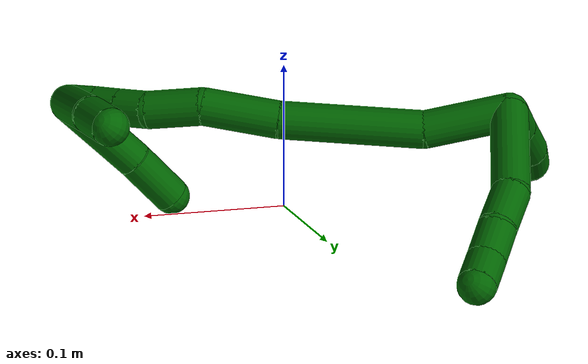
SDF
<sdf version="1.7">
 <world name="default">
  <model name="6">
   <static>0</static>
   <link name="6">
    <collision name="collision-cylinder-e_1_2_8">
     <pose>0.027627 0.019036 0.014315 -0.926016 0.859309 -0.449734</pose>
     <geometry><cylinder><radius>0.0125</radius><length>0.072952</length></cylinder></geometry>
     <surface>
      <friction><ode><mu>1.16</mu><mu2>1.16</mu2><slip1>0</slip1><slip2>0</slip2></ode></friction>
      <contact><ode><kp>1e+06</kp><kd>1</kd><max_vel>0</max_vel><min_depth>0.001</min_depth></ode></contact>
     </surface>
    </collision>
    <visual name="visual-cylinder-e_1_2_8">
     <pose>0.027627 0.019036 0.014315 -0.926016 0.859309 -0.449734</pose>
     <geometry><cylinder><radius>0.0125</radius><length>0.072952</length></cylinder></geometry>
     <material><ambient>0 0.392157 0.003922 1</ambient></material>
    </visual>
    <collision name="collision-cylinder-e_2_8_9">
     <pose>0.06809 0.042061 0.035937 -0.499698 0.995413 -0.275538</pose>
     <geometry><cylinder><radius>0.0125</radius><length>0.030601</length></cylinder></geometry>
     <surface>
      <friction><ode><mu>1.16</mu><mu2>1.16</mu2><slip1>0</slip1><slip2>0</slip2></ode></friction>
      <contact><ode><kp>1e+06</kp><kd>1</kd><max_vel>0</max_vel><min_depth>0.001</min_depth></ode></contact>
     </surface>
    </collision>
    <visual name="visual-cylinder-e_2_8_9">
     <pose>0.06809 0.042061 0.035937 -0.499698 0.995413 -0.275538</pose>
     <geometry><cylinder><radius>0.0125</radius><length>0.030601</length></cylinder></geometry>
     <material><ambient>0 0.392157 0.003922 1</ambient></material>
    </visual>
    <collision name="collision-cylinder-e_3_9_10">
     <pose>0.092013 0.048371 0.046888 -0.56729 1.19933 -0.393417</pose>
     <geometry><cylinder><radius>0.0125</radius><length>0.023795</length></cylinder></geometry>
     <surface>
      <friction><ode><mu>1.16</mu><mu2>1.16</mu2><slip1>0</slip1><slip2>0</slip2></ode></friction>
      <contact><ode><kp>1e+06</kp><kd>1</kd><max_vel>0</max_vel><min_depth>0.001</min_depth></ode></contact>
     </surface>
    </collision>
    <visual name="visual-cylinder-e_3_9_10">
     <pose>0.092013 0.048371 0.046888 -0.56729 1.19933 -0.393417</pose>
     <geometry><cylinder><radius>0.0125</radius><length>0.023795</length></cylinder></geometry>
     <material><ambient>0 0.392157 0.003922 1</ambient></material>
    </visual>
    <collision name="collision-cylinder-e_4_10_6">
     <pose>0.11216 0.054106 0.056405 -0.526519 0.927269 -0.267892</pose>
     <geometry><cylinder><radius>0.0125</radius><length>0.022652</length></cylinder></geometry>
     <surface>
      <friction><ode><mu>1.16</mu><mu2>1.16</mu2><slip1>0</slip1><slip2>0</slip2></ode></friction>
      <contact><ode><kp>1e+06</kp><kd>1</kd><max_vel>0</max_vel><min_depth>0.001</min_depth></ode></contact>
     </surface>
    </collision>
    <visual name="visual-cylinder-e_4_10_6">
     <pose>0.11216 0.054106 0.056405 -0.526519 0.927269 -0.267892</pose>
     <geometry><cylinder><radius>0.0125</radius><length>0.022652</length></cylinder></geometry>
     <material><ambient>0 0.392157 0.003922 1</ambient></material>
    </visual>
    <collision name="collision-cylinder-e_1_2_11">
     <pose>0.001745 -0.002877 -0.013151 2.92623 0.128894 1.07644</pose>
     <geometry><cylinder><radius>0.0125</radius><length>0.02715</length></cylinder></geometry>
     <surface>
      <friction><ode><mu>1.16</mu><mu2>1.16</mu2><slip1>0</slip1><slip2>0</slip2></ode></friction>
      <contact><ode><kp>1e+06</kp><kd>1</kd><max_vel>0</max_vel><min_depth>0.001</min_depth></ode></contact>
     </surface>
    </collision>
    <visual name="visual-cylinder-e_1_2_11">
     <pose>0.001745 -0.002877 -0.013151 2.92623 0.128894 1.07644</pose>
     <geometry><cylinder><radius>0.0125</radius><length>0.02715</length></cylinder></geometry>
     <material><ambient>0 0.392157 0.003922 1</ambient></material>
    </visual>
    <collision name="collision-cylinder-e_2_11_12">
     <pose>0.005325 -0.01068 -0.046879 2.90662 0.086507 0.702941</pose>
     <geometry><cylinder><radius>0.0125</radius><length>0.042474</length></cylinder></geometry>
     <surface>
      <friction><ode><mu>1.16</mu><mu2>1.16</mu2><slip1>0</slip1><slip2>0</slip2></ode></friction>
      <contact><ode><kp>1e+06</kp><kd>1</kd><max_vel>0</max_vel><min_depth>0.001</min_depth></ode></contact>
     </surface>
    </collision>
    <visual name="visual-cylinder-e_2_11_12">
     <pose>0.005325 -0.01068 -0.046879 2.90662 0.086507 0.702941</pose>
     <geometry><cylinder><radius>0.0125</radius><length>0.042474</length></cylinder></geometry>
     <material><ambient>0 0.392157 0.003922 1</ambient></material>
    </visual>
    <collision name="collision-cylinder-e_3_12_5">
     <pose>0.008837 -0.020923 -0.081583 2.7816 0.110703 0.591157</pose>
     <geometry><cylinder><radius>0.0125</radius><length>0.030376</length></cylinder></geometry>
     <surface>
      <friction><ode><mu>1.16</mu><mu2>1.16</mu2><slip1>0</slip1><slip2>0</slip2></ode></friction>
      <contact><ode><kp>1e+06</kp><kd>1</kd><max_vel>0</max_vel><min_depth>0.001</min_depth></ode></contact>
     </surface>
    </collision>
    <visual name="visual-cylinder-e_3_12_5">
     <pose>0.008837 -0.020923 -0.081583 2.7816 0.110703 0.591157</pose>
     <geometry><cylinder><radius>0.0125</radius><length>0.030376</length></cylinder></geometry>
     <material><ambient>0 0.392157 0.003922 1</ambient></material>
    </visual>
    <collision name="collision-cylinder-e_1_2_13">
     <pose>0.014363 -0.022206 0.008804 1.19336 0.541337 0.372595</pose>
     <geometry><cylinder><radius>0.0125</radius><length>0.055746</length></cylinder></geometry>
     <surface>
      <friction><ode><mu>1.16</mu><mu2>1.16</mu2><slip1>0</slip1><slip2>0</slip2></ode></friction>
      <contact><ode><kp>1e+06</kp><kd>1</kd><max_vel>0</max_vel><min_depth>0.001</min_depth></ode></contact>
     </surface>
    </collision>
    <visual name="visual-cylinder-e_1_2_13">
     <pose>0.014363 -0.022206 0.008804 1.19336 0.541337 0.372595</pose>
     <geometry><cylinder><radius>0.0125</radius><length>0.055746</length></cylinder></geometry>
     <material><ambient>0 0.392157 0.003922 1</ambient></material>
    </visual>
    <collision name="collision-cylinder-e_2_13_14">
     <pose>0.041942 -0.084165 0.039028 1.07654 0.284751 0.170761</pose>
     <geometry><cylinder><radius>0.0125</radius><length>0.094101</length></cylinder></geometry>
     <surface>
      <friction><ode><mu>1.16</mu><mu2>1.16</mu2><slip1>0</slip1><slip2>0</slip2></ode></friction>
      <contact><ode><kp>1e+06</kp><kd>1</kd><max_vel>0</max_vel><min_depth>0.001</min_depth></ode></contact>
     </surface>
    </collision>
    <visual name="visual-cylinder-e_2_13_14">
     <pose>0.041942 -0.084165 0.039028 1.07654 0.284751 0.170761</pose>
     <geometry><cylinder><radius>0.0125</radius><length>0.094101</length></cylinder></geometry>
     <material><ambient>0 0.392157 0.003922 1</ambient></material>
    </visual>
    <collision name="collision-cylinder-e_3_14_15">
     <pose>0.059584 -0.145855 0.07238 1.0727 0.175349 0.104415</pose>
     <geometry><cylinder><radius>0.0125</radius><length>0.050725</length></cylinder></geometry>
     <surface>
      <friction><ode><mu>1.16</mu><mu2>1.16</mu2><slip1>0</slip1><slip2>0</slip2></ode></friction>
      <contact><ode><kp>1e+06</kp><kd>1</kd><max_vel>0</max_vel><min_depth>0.001</min_depth></ode></contact>
     </surface>
    </collision>
    <visual name="visual-cylinder-e_3_14_15">
     <pose>0.059584 -0.145855 0.07238 1.0727 0.175349 0.104415</pose>
     <geometry><cylinder><radius>0.0125</radius><length>0.050725</length></cylinder></geometry>
     <material><ambient>0 0.392157 0.003922 1</ambient></material>
    </visual>
    <collision name="collision-cylinder-e_4_15_16">
     <pose>0.070788 -0.184426 0.089105 1.29018 0.373281 0.282305</pose>
     <geometry><cylinder><radius>0.0125</radius><length>0.037178</length></cylinder></geometry>
     <surface>
      <friction><ode><mu>1.16</mu><mu2>1.16</mu2><slip1>0</slip1><slip2>0</slip2></ode></friction>
      <contact><ode><kp>1e+06</kp><kd>1</kd><max_vel>0</max_vel><min_depth>0.001</min_depth></ode></contact>
     </surface>
    </collision>
    <visual name="visual-cylinder-e_4_15_16">
     <pose>0.070788 -0.184426 0.089105 1.29018 0.373281 0.282305</pose>
     <geometry><cylinder><radius>0.0125</radius><length>0.037178</length></cylinder></geometry>
     <material><ambient>0 0.392157 0.003922 1</ambient></material>
    </visual>
    <collision name="collision-cylinder-e_5_16_17">
     <pose>0.079224 -0.211574 0.094163 1.54568 0.156307 0.152445</pose>
     <geometry><cylinder><radius>0.0125</radius><length>0.021297</length></cylinder></geometry>
     <surface>
      <friction><ode><mu>1.16</mu><mu2>1.16</mu2><slip1>0</slip1><slip2>0</slip2></ode></friction>
      <contact><ode><kp>1e+06</kp><kd>1</kd><max_vel>0</max_vel><min_depth>0.001</min_depth></ode></contact>
     </surface>
    </collision>
    <visual name="visual-cylinder-e_5_16_17">
     <pose>0.079224 -0.211574 0.094163 1.54568 0.156307 0.152445</pose>
     <geometry><cylinder><radius>0.0125</radius><length>0.021297</length></cylinder></geometry>
     <material><ambient>0 0.392157 0.003922 1</ambient></material>
    </visual>
    <collision name="collision-cylinder-e_6_17_18">
     <pose>0.082356 -0.232054 0.094624 1.55106 0.146784 0.143925</pose>
     <geometry><cylinder><radius>0.0125</radius><length>0.020149</length></cylinder></geometry>
     <surface>
      <friction><ode><mu>1.16</mu><mu2>1.16</mu2><slip1>0</slip1><slip2>0</slip2></ode></friction>
      <contact><ode><kp>1e+06</kp><kd>1</kd><max_vel>0</max_vel><min_depth>0.001</min_depth></ode></contact>
     </surface>
    </collision>
    <visual name="visual-cylinder-e_6_17_18">
     <pose>0.082356 -0.232054 0.094624 1.55106 0.146784 0.143925</pose>
     <geometry><cylinder><radius>0.0125</radius><length>0.020149</length></cylinder></geometry>
     <material><ambient>0 0.392157 0.003922 1</ambient></material>
    </visual>
    <collision name="collision-cylinder-e_7_18_1">
     <pose>0.086136 -0.251951 0.096871 1.3672 0.223676 0.182469</pose>
     <geometry><cylinder><radius>0.0125</radius><length>0.020803</length></cylinder></geometry>
     <surface>
      <friction><ode><mu>1.16</mu><mu2>1.16</mu2><slip1>0</slip1><slip2>0</slip2></ode></friction>
      <contact><ode><kp>1e+06</kp><kd>1</kd><max_vel>0</max_vel><min_depth>0.001</min_depth></ode></contact>
     </surface>
    </collision>
    <visual name="visual-cylinder-e_7_18_1">
     <pose>0.086136 -0.251951 0.096871 1.3672 0.223676 0.182469</pose>
     <geometry><cylinder><radius>0.0125</radius><length>0.020803</length></cylinder></geometry>
     <material><ambient>0 0.392157 0.003922 1</ambient></material>
    </visual>
    <collision name="collision-cylinder-e_1_1_19">
     <pose>0.093383 -0.234056 0.119713 -0.929151 0.141248 -0.070876</pose>
     <geometry><cylinder><radius>0.0125</radius><length>0.070173</length></cylinder></geometry>
     <surface>
      <friction><ode><mu>1.16</mu><mu2>1.16</mu2><slip1>0</slip1><slip2>0</slip2></ode></friction>
      <contact><ode><kp>1e+06</kp><kd>1</kd><max_vel>0</max_vel><min_depth>0.001</min_depth></ode></contact>
     </surface>
    </collision>
    <visual name="visual-cylinder-e_1_1_19">
     <pose>0.093383 -0.234056 0.119713 -0.929151 0.141248 -0.070876</pose>
     <geometry><cylinder><radius>0.0125</radius><length>0.070173</length></cylinder></geometry>
     <material><ambient>0 0.392157 0.003922 1</ambient></material>
    </visual>
    <collision name="collision-cylinder-e_2_19_4">
     <pose>0.101133 -0.192682 0.146075 -1.18054 0.189603 -0.127234</pose>
     <geometry><cylinder><radius>0.0125</radius><length>0.029827</length></cylinder></geometry>
     <surface>
      <friction><ode><mu>1.16</mu><mu2>1.16</mu2><slip1>0</slip1><slip2>0</slip2></ode></friction>
      <contact><ode><kp>1e+06</kp><kd>1</kd><max_vel>0</max_vel><min_depth>0.001</min_depth></ode></contact>
     </surface>
    </collision>
    <visual name="visual-cylinder-e_2_19_4">
     <pose>0.101133 -0.192682 0.146075 -1.18054 0.189603 -0.127234</pose>
     <geometry><cylinder><radius>0.0125</radius><length>0.029827</length></cylinder></geometry>
     <material><ambient>0 0.392157 0.003922 1</ambient></material>
    </visual>
    <collision name="collision-cylinder-e_1_1_20">
     <pose>0.096872 -0.247897 0.072893 -2.6485 0.277875 -1.01434</pose>
     <geometry><cylinder><radius>0.0125</radius><length>0.061455</length></cylinder></geometry>
     <surface>
      <friction><ode><mu>1.16</mu><mu2>1.16</mu2><slip1>0</slip1><slip2>0</slip2></ode></friction>
      <contact><ode><kp>1e+06</kp><kd>1</kd><max_vel>0</max_vel><min_depth>0.001</min_depth></ode></contact>
     </surface>
    </collision>
    <visual name="visual-cylinder-e_1_1_20">
     <pose>0.096872 -0.247897 0.072893 -2.6485 0.277875 -1.01434</pose>
     <geometry><cylinder><radius>0.0125</radius><length>0.061455</length></cylinder></geometry>
     <material><ambient>0 0.392157 0.003922 1</ambient></material>
    </visual>
    <collision name="collision-cylinder-e_2_20_3">
     <pose>0.11126 -0.22642 0.030137 -2.72062 0.314346 -1.27642</pose>
     <geometry><cylinder><radius>0.0125</radius><length>0.038545</length></cylinder></geometry>
     <surface>
      <friction><ode><mu>1.16</mu><mu2>1.16</mu2><slip1>0</slip1><slip2>0</slip2></ode></friction>
      <contact><ode><kp>1e+06</kp><kd>1</kd><max_vel>0</max_vel><min_depth>0.001</min_depth></ode></contact>
     </surface>
    </collision>
    <visual name="visual-cylinder-e_2_20_3">
     <pose>0.11126 -0.22642 0.030137 -2.72062 0.314346 -1.27642</pose>
     <geometry><cylinder><radius>0.0125</radius><length>0.038545</length></cylinder></geometry>
     <material><ambient>0 0.392157 0.003922 1</ambient></material>
    </visual>
    <collision name="collision-sphere-3">
     <pose>0.117219 -0.21893 0.013409 0 -0 0</pose>
     <geometry><sphere><radius>0.0125</radius></sphere></geometry>
     <surface>
      <friction><ode><mu>1.16</mu><mu2>1.16</mu2><slip1>0</slip1><slip2>0</slip2></ode></friction>
      <contact><ode><kp>1e+06</kp><kd>1</kd><max_vel>0</max_vel><min_depth>0.001</min_depth></ode></contact>
     </surface>
    </collision>
    <visual name="visual-sphere-3">
     <pose>0.117219 -0.21893 0.013409 0 -0 0</pose>
     <geometry><sphere><radius>0.0125</radius></sphere></geometry>
     <material><ambient>0 0.392157 0.003922 1</ambient></material>
    </visual>
    <collision name="collision-sphere-20">
     <pose>0.105301 -0.23391 0.046865 0 -0 0</pose>
     <geometry><sphere><radius>0.0125</radius></sphere></geometry>
     <surface>
      <friction><ode><mu>1.16</mu><mu2>1.16</mu2><slip1>0</slip1><slip2>0</slip2></ode></friction>
      <contact><ode><kp>1e+06</kp><kd>1</kd><max_vel>0</max_vel><min_depth>0.001</min_depth></ode></contact>
     </surface>
    </collision>
    <visual name="visual-sphere-20">
     <pose>0.105301 -0.23391 0.046865 0 -0 0</pose>
     <geometry><sphere><radius>0.0125</radius></sphere></geometry>
     <material><ambient>0 0.392157 0.003922 1</ambient></material>
    </visual>
    <collision name="collision-sphere-4">
     <pose>0.103944 -0.179137 0.151647 0 -0 0</pose>
     <geometry><sphere><radius>0.0125</radius></sphere></geometry>
     <surface>
      <friction><ode><mu>1.16</mu><mu2>1.16</mu2><slip1>0</slip1><slip2>0</slip2></ode></friction>
      <contact><ode><kp>1e+06</kp><kd>1</kd><max_vel>0</max_vel><min_depth>0.001</min_depth></ode></contact>
     </surface>
    </collision>
    <visual name="visual-sphere-4">
     <pose>0.103944 -0.179137 0.151647 0 -0 0</pose>
     <geometry><sphere><radius>0.0125</radius></sphere></geometry>
     <material><ambient>0 0.392157 0.003922 1</ambient></material>
    </visual>
    <collision name="collision-sphere-11">
     <pose>0.00349 -0.005754 -0.026303 0 -0 0</pose>
     <geometry><sphere><radius>0.0125</radius></sphere></geometry>
     <surface>
      <friction><ode><mu>1.16</mu><mu2>1.16</mu2><slip1>0</slip1><slip2>0</slip2></ode></friction>
      <contact><ode><kp>1e+06</kp><kd>1</kd><max_vel>0</max_vel><min_depth>0.001</min_depth></ode></contact>
     </surface>
    </collision>
    <visual name="visual-sphere-11">
     <pose>0.00349 -0.005754 -0.026303 0 -0 0</pose>
     <geometry><sphere><radius>0.0125</radius></sphere></geometry>
     <material><ambient>0 0.392157 0.003922 1</ambient></material>
    </visual>
    <collision name="collision-sphere-6">
     <pose>0.12122 0.057521 0.06228 0 -0 0</pose>
     <geometry><sphere><radius>0.0125</radius></sphere></geometry>
     <surface>
      <friction><ode><mu>1.16</mu><mu2>1.16</mu2><slip1>0</slip1><slip2>0</slip2></ode></friction>
      <contact><ode><kp>1e+06</kp><kd>1</kd><max_vel>0</max_vel><min_depth>0.001</min_depth></ode></contact>
     </surface>
    </collision>
    <visual name="visual-sphere-6">
     <pose>0.12122 0.057521 0.06228 0 -0 0</pose>
     <geometry><sphere><radius>0.0125</radius></sphere></geometry>
     <material><ambient>0 0.392157 0.003922 1</ambient></material>
    </visual>
    <collision name="collision-sphere-10">
     <pose>0.103099 0.050691 0.05053 0 -0 0</pose>
     <geometry><sphere><radius>0.0125</radius></sphere></geometry>
     <surface>
      <friction><ode><mu>1.16</mu><mu2>1.16</mu2><slip1>0</slip1><slip2>0</slip2></ode></friction>
      <contact><ode><kp>1e+06</kp><kd>1</kd><max_vel>0</max_vel><min_depth>0.001</min_depth></ode></contact>
     </surface>
    </collision>
    <visual name="visual-sphere-10">
     <pose>0.103099 0.050691 0.05053 0 -0 0</pose>
     <geometry><sphere><radius>0.0125</radius></sphere></geometry>
     <material><ambient>0 0.392157 0.003922 1</ambient></material>
    </visual>
    <collision name="collision-sphere-9">
     <pose>0.080927 0.04605 0.043245 0 -0 0</pose>
     <geometry><sphere><radius>0.0125</radius></sphere></geometry>
     <surface>
      <friction><ode><mu>1.16</mu><mu2>1.16</mu2><slip1>0</slip1><slip2>0</slip2></ode></friction>
      <contact><ode><kp>1e+06</kp><kd>1</kd><max_vel>0</max_vel><min_depth>0.001</min_depth></ode></contact>
     </surface>
    </collision>
    <visual name="visual-sphere-9">
     <pose>0.080927 0.04605 0.043245 0 -0 0</pose>
     <geometry><sphere><radius>0.0125</radius></sphere></geometry>
     <material><ambient>0 0.392157 0.003922 1</ambient></material>
    </visual>
    <collision name="collision-sphere-2">
     <geometry><sphere><radius>0.0125</radius></sphere></geometry>
     <surface>
      <friction><ode><mu>1.16</mu><mu2>1.16</mu2><slip1>0</slip1><slip2>0</slip2></ode></friction>
      <contact><ode><kp>1e+06</kp><kd>1</kd><max_vel>0</max_vel><min_depth>0.001</min_depth></ode></contact>
     </surface>
    </collision>
    <visual name="visual-sphere-2">
     <geometry><sphere><radius>0.0125</radius></sphere></geometry>
     <material><ambient>0 0.392157 0.003922 1</ambient></material>
    </visual>
    <collision name="collision-sphere-19">
     <pose>0.098322 -0.206227 0.140504 0 -0 0</pose>
     <geometry><sphere><radius>0.0125</radius></sphere></geometry>
     <surface>
      <friction><ode><mu>1.16</mu><mu2>1.16</mu2><slip1>0</slip1><slip2>0</slip2></ode></friction>
      <contact><ode><kp>1e+06</kp><kd>1</kd><max_vel>0</max_vel><min_depth>0.001</min_depth></ode></contact>
     </surface>
    </collision>
    <visual name="visual-sphere-19">
     <pose>0.098322 -0.206227 0.140504 0 -0 0</pose>
     <geometry><sphere><radius>0.0125</radius></sphere></geometry>
     <material><ambient>0 0.392157 0.003922 1</ambient></material>
    </visual>
    <collision name="collision-sphere-8">
     <pose>0.055253 0.038071 0.02863 0 -0 0</pose>
     <geometry><sphere><radius>0.0125</radius></sphere></geometry>
     <surface>
      <friction><ode><mu>1.16</mu><mu2>1.16</mu2><slip1>0</slip1><slip2>0</slip2></ode></friction>
      <contact><ode><kp>1e+06</kp><kd>1</kd><max_vel>0</max_vel><min_depth>0.001</min_depth></ode></contact>
     </surface>
    </collision>
    <visual name="visual-sphere-8">
     <pose>0.055253 0.038071 0.02863 0 -0 0</pose>
     <geometry><sphere><radius>0.0125</radius></sphere></geometry>
     <material><ambient>0 0.392157 0.003922 1</ambient></material>
    </visual>
    <collision name="collision-sphere-12">
     <pose>0.00716 -0.015606 -0.067456 0 -0 0</pose>
     <geometry><sphere><radius>0.0125</radius></sphere></geometry>
     <surface>
      <friction><ode><mu>1.16</mu><mu2>1.16</mu2><slip1>0</slip1><slip2>0</slip2></ode></friction>
      <contact><ode><kp>1e+06</kp><kd>1</kd><max_vel>0</max_vel><min_depth>0.001</min_depth></ode></contact>
     </surface>
    </collision>
    <visual name="visual-sphere-12">
     <pose>0.00716 -0.015606 -0.067456 0 -0 0</pose>
     <geometry><sphere><radius>0.0125</radius></sphere></geometry>
     <material><ambient>0 0.392157 0.003922 1</ambient></material>
    </visual>
    <collision name="collision-sphere-5">
     <pose>0.010515 -0.02624 -0.09571 0 -0 0</pose>
     <geometry><sphere><radius>0.0125</radius></sphere></geometry>
     <surface>
      <friction><ode><mu>1.16</mu><mu2>1.16</mu2><slip1>0</slip1><slip2>0</slip2></ode></friction>
      <contact><ode><kp>1e+06</kp><kd>1</kd><max_vel>0</max_vel><min_depth>0.001</min_depth></ode></contact>
     </surface>
    </collision>
    <visual name="visual-sphere-5">
     <pose>0.010515 -0.02624 -0.09571 0 -0 0</pose>
     <geometry><sphere><radius>0.0125</radius></sphere></geometry>
     <material><ambient>0 0.392157 0.003922 1</ambient></material>
    </visual>
    <collision name="collision-sphere-13">
     <pose>0.028725 -0.044413 0.017607 0 -0 0</pose>
     <geometry><sphere><radius>0.0125</radius></sphere></geometry>
     <surface>
      <friction><ode><mu>1.16</mu><mu2>1.16</mu2><slip1>0</slip1><slip2>0</slip2></ode></friction>
      <contact><ode><kp>1e+06</kp><kd>1</kd><max_vel>0</max_vel><min_depth>0.001</min_depth></ode></contact>
     </surface>
    </collision>
    <visual name="visual-sphere-13">
     <pose>0.028725 -0.044413 0.017607 0 -0 0</pose>
     <geometry><sphere><radius>0.0125</radius></sphere></geometry>
     <material><ambient>0 0.392157 0.003922 1</ambient></material>
    </visual>
    <collision name="collision-sphere-14">
     <pose>0.05516 -0.123916 0.060449 0 -0 0</pose>
     <geometry><sphere><radius>0.0125</radius></sphere></geometry>
     <surface>
      <friction><ode><mu>1.16</mu><mu2>1.16</mu2><slip1>0</slip1><slip2>0</slip2></ode></friction>
      <contact><ode><kp>1e+06</kp><kd>1</kd><max_vel>0</max_vel><min_depth>0.001</min_depth></ode></contact>
     </surface>
    </collision>
    <visual name="visual-sphere-14">
     <pose>0.05516 -0.123916 0.060449 0 -0 0</pose>
     <geometry><sphere><radius>0.0125</radius></sphere></geometry>
     <material><ambient>0 0.392157 0.003922 1</ambient></material>
    </visual>
    <collision name="collision-sphere-15">
     <pose>0.064009 -0.167795 0.084311 0 -0 0</pose>
     <geometry><sphere><radius>0.0125</radius></sphere></geometry>
     <surface>
      <friction><ode><mu>1.16</mu><mu2>1.16</mu2><slip1>0</slip1><slip2>0</slip2></ode></friction>
      <contact><ode><kp>1e+06</kp><kd>1</kd><max_vel>0</max_vel><min_depth>0.001</min_depth></ode></contact>
     </surface>
    </collision>
    <visual name="visual-sphere-15">
     <pose>0.064009 -0.167795 0.084311 0 -0 0</pose>
     <geometry><sphere><radius>0.0125</radius></sphere></geometry>
     <material><ambient>0 0.392157 0.003922 1</ambient></material>
    </visual>
    <collision name="collision-sphere-16">
     <pose>0.077567 -0.201058 0.093899 0 -0 0</pose>
     <geometry><sphere><radius>0.0125</radius></sphere></geometry>
     <surface>
      <friction><ode><mu>1.16</mu><mu2>1.16</mu2><slip1>0</slip1><slip2>0</slip2></ode></friction>
      <contact><ode><kp>1e+06</kp><kd>1</kd><max_vel>0</max_vel><min_depth>0.001</min_depth></ode></contact>
     </surface>
    </collision>
    <visual name="visual-sphere-16">
     <pose>0.077567 -0.201058 0.093899 0 -0 0</pose>
     <geometry><sphere><radius>0.0125</radius></sphere></geometry>
     <material><ambient>0 0.392157 0.003922 1</ambient></material>
    </visual>
    <collision name="collision-sphere-17">
     <pose>0.080882 -0.222089 0.094427 0 -0 0</pose>
     <geometry><sphere><radius>0.0125</radius></sphere></geometry>
     <surface>
      <friction><ode><mu>1.16</mu><mu2>1.16</mu2><slip1>0</slip1><slip2>0</slip2></ode></friction>
      <contact><ode><kp>1e+06</kp><kd>1</kd><max_vel>0</max_vel><min_depth>0.001</min_depth></ode></contact>
     </surface>
    </collision>
    <visual name="visual-sphere-17">
     <pose>0.080882 -0.222089 0.094427 0 -0 0</pose>
     <geometry><sphere><radius>0.0125</radius></sphere></geometry>
     <material><ambient>0 0.392157 0.003922 1</ambient></material>
    </visual>
    <collision name="collision-sphere-18">
     <pose>0.083829 -0.242018 0.094821 0 -0 0</pose>
     <geometry><sphere><radius>0.0125</radius></sphere></geometry>
     <surface>
      <friction><ode><mu>1.16</mu><mu2>1.16</mu2><slip1>0</slip1><slip2>0</slip2></ode></friction>
      <contact><ode><kp>1e+06</kp><kd>1</kd><max_vel>0</max_vel><min_depth>0.001</min_depth></ode></contact>
     </surface>
    </collision>
    <visual name="visual-sphere-18">
     <pose>0.083829 -0.242018 0.094821 0 -0 0</pose>
     <geometry><sphere><radius>0.0125</radius></sphere></geometry>
     <material><ambient>0 0.392157 0.003922 1</ambient></material>
    </visual>
    <collision name="collision-sphere-1">
     <pose>0.088443 -0.261884 0.098922 0 -0 0</pose>
     <geometry><sphere><radius>0.0125</radius></sphere></geometry>
     <surface>
      <friction><ode><mu>1.16</mu><mu2>1.16</mu2><slip1>0</slip1><slip2>0</slip2></ode></friction>
      <contact><ode><kp>1e+06</kp><kd>1</kd><max_vel>0</max_vel><min_depth>0.001</min_depth></ode></contact>
     </surface>
    </collision>
    <visual name="visual-sphere-1">
     <pose>0.088443 -0.261884 0.098922 0 -0 0</pose>
     <geometry><sphere><radius>0.0125</radius></sphere></geometry>
     <material><ambient>0 0.392157 0.003922 1</ambient></material>
    </visual>
    <inertial>
     <pose>0.05963 -0.106779 0.046913 0 -0 0</pose>
     <mass>0.75</mass>
     <inertia><ixx>0.0002</ixx><ixy>0</ixy><ixz>0</ixz><iyy>7.7e-05</iyy><iyz>0</iyz><izz>-4e-05</izz></inertia>
    </inertial>
   </link>
   <pose>-0.105135 0.155461 0.092446 -0.186596 1.05917 0.467641</pose>
  </model>
 </world>
</sdf>
